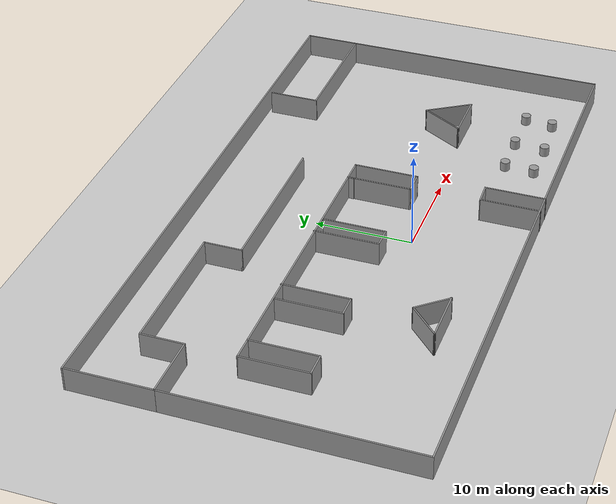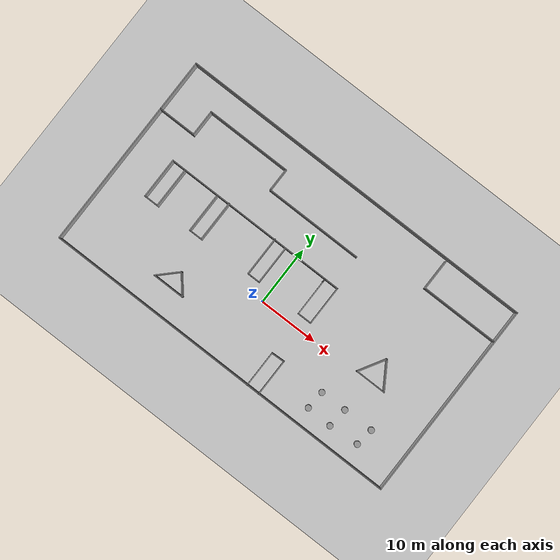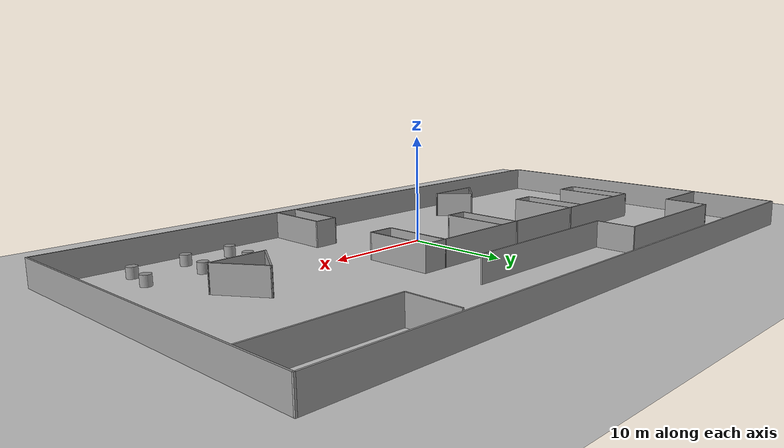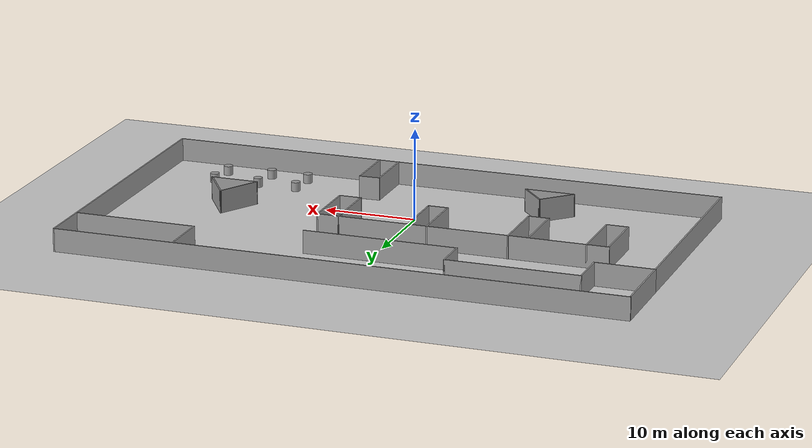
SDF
<sdf version="1.6">
 <world name="default">
  <light name="sun" type="directional">
   <pose>0 0 10 0 -0 0</pose>
   <diffuse>0.8 0.8 0.8 1</diffuse>
   <specular>0.1 0.1 0.1 1</specular>
   <attenuation>
    <range>1000</range>
    <constant>0.9</constant>
    <linear>0.01</linear>
    <quadratic>0.001</quadratic>
   </attenuation>
   <direction>-0.5 0.5 -1</direction>
  </light>
  <model name="ground_plane">
   <static>1</static>
   <link name="link">
    <collision name="collision">
     <geometry><plane><normal>0 0 1</normal><size>100 100</size></plane></geometry>
     <surface><friction><ode><mu>100</mu><mu2>50</mu2></ode></friction></surface>
    </collision>
    <visual name="visual">
     <cast_shadows>0</cast_shadows>
     <geometry><plane><normal>0 0 1</normal><size>100 100</size></plane></geometry>
     <material>
      <script><uri>file://media/materials/scripts/gazebo.material</uri><name>Gazebo/Grey</name></script>
     </material>
    </visual>
   </link>
  </model>
  <gravity>0 0 -9.8</gravity>
  <magnetic_field>6e-06 2.3e-05 -4.2e-05</magnetic_field>
  <atmosphere type="adiabatic"/>
  <physics name="default_physics" default="0" type="ode">
   <max_step_size>0.001</max_step_size>
   <real_time_factor>1</real_time_factor>
   <real_time_update_rate>1000</real_time_update_rate>
  </physics>
  <scene><ambient>0.4 0.4 0.4 1</ambient><background>0.7 0.7 0.7 1</background><shadows>1</shadows></scene>
  <spherical_coordinates>
   <surface_model>EARTH_WGS84</surface_model>
   <latitude_deg>0</latitude_deg>
   <longitude_deg>0</longitude_deg>
   <elevation>0</elevation>
   <heading_deg>0</heading_deg>
  </spherical_coordinates>
  <model name="Untitled">
   <pose>0.5791 5.47692 0 0 -0 0</pose>
   <link name="Wall_10">
    <collision name="Wall_10_Collision">
     <geometry><box><size>25 0.15 2.5</size></box></geometry>
     <pose>0 0 1.25 0 -0 0</pose>
    </collision>
    <visual name="Wall_10_Visual">
     <pose>0 0 1.25 0 -0 0</pose>
     <geometry><box><size>25 0.15 2.5</size></box></geometry>
     <material>
      <script><uri>file://media/materials/scripts/gazebo.material</uri><name>Gazebo/Grey</name></script>
      <ambient>1 1 1 1</ambient>
     </material>
    </visual>
    <pose>-30.8 -4.35416 0 0 0 -1.5708</pose>
   </link>
   <link name="Wall_11">
    <collision name="Wall_11_Collision">
     <geometry><box><size>61.75 0.15 2.5</size></box></geometry>
     <pose>0 0 1.25 0 -0 0</pose>
    </collision>
    <visual name="Wall_11_Visual">
     <pose>0 0 1.25 0 -0 0</pose>
     <geometry><box><size>61.75 0.15 2.5</size></box></geometry>
     <material>
      <script><uri>file://media/materials/scripts/gazebo.material</uri><name>Gazebo/Grey</name></script>
      <ambient>1 1 1 1</ambient>
     </material>
    </visual>
    <pose>-1e-06 -16.7792 0 0 -0 0</pose>
   </link>
   <link name="Wall_12">
    <collision name="Wall_12_Collision">
     <geometry><box><size>33.75 0.15 2.5</size></box></geometry>
     <pose>0 0 1.25 0 -0 0</pose>
    </collision>
    <visual name="Wall_12_Visual">
     <pose>0 0 1.25 0 -0 0</pose>
     <geometry><box><size>33.75 0.15 2.5</size></box></geometry>
     <material>
      <script><uri>file://media/materials/scripts/gazebo.material</uri><name>Gazebo/Grey</name></script>
      <ambient>1 1 1 1</ambient>
     </material>
    </visual>
    <pose>30.8 0.020844 0 0 -0 1.5708</pose>
   </link>
   <link name="Wall_13">
    <collision name="Wall_13_Collision">
     <geometry><box><size>61.75 0.15 2.5</size></box></geometry>
     <pose>0 0 1.25 0 -0 0</pose>
    </collision>
    <visual name="Wall_13_Visual">
     <pose>0 0 1.25 0 -0 0</pose>
     <geometry><box><size>61.75 0.15 2.5</size></box></geometry>
     <material>
      <script><uri>file://media/materials/scripts/gazebo.material</uri><name>Gazebo/Grey</name></script>
      <ambient>1 1 1 1</ambient>
     </material>
    </visual>
    <pose>-1e-06 16.8208 0 0 -0 3.14159</pose>
   </link>
   <link name="Wall_14">
    <collision name="Wall_14_Collision">
     <geometry><box><size>8.9 0.15 2.5</size></box></geometry>
     <pose>0 0 1.25 0 -0 0</pose>
    </collision>
    <visual name="Wall_14_Visual">
     <pose>0 0 1.25 0 -0 0</pose>
     <geometry><box><size>8.9 0.15 2.5</size></box></geometry>
     <material>
      <script><uri>file://media/materials/scripts/gazebo.material</uri><name>Gazebo/Grey</name></script>
      <ambient>1 1 1 1</ambient>
     </material>
    </visual>
    <pose>-30.8 12.4458 0 0 0 -1.5708</pose>
   </link>
   <link name="Wall_15">
    <collision name="Wall_15_Collision">
     <geometry><box><size>6.5 0.15 2.5</size></box></geometry>
     <pose>0 0 1.25 0 -0 0</pose>
    </collision>
    <visual name="Wall_15_Visual">
     <pose>0 0 1.25 0 -0 0</pose>
     <geometry><box><size>6.5 0.15 2.5</size></box></geometry>
     <material>
      <script><uri>file://media/materials/scripts/gazebo.material</uri><name>Gazebo/Grey</name></script>
      <ambient>1 1 1 1</ambient>
     </material>
    </visual>
    <pose>-27.625 8.07085 0 0 -0 0</pose>
   </link>
   <link name="Wall_16">
    <collision name="Wall_16_Collision">
     <geometry><box><size>4.5 0.15 2.5</size></box></geometry>
     <pose>0 0 1.25 0 -0 0</pose>
    </collision>
    <visual name="Wall_16_Visual">
     <pose>0 0 1.25 0 -0 0</pose>
     <geometry><box><size>4.5 0.15 2.5</size></box></geometry>
     <material>
      <script><uri>file://media/materials/scripts/gazebo.material</uri><name>Gazebo/Grey</name></script>
      <ambient>1 1 1 1</ambient>
     </material>
    </visual>
    <pose>-24.45 10.2458 0 0 -0 1.5708</pose>
   </link>
   <link name="Wall_17">
    <collision name="Wall_17_Collision">
     <geometry><box><size>14.5 0.15 2.5</size></box></geometry>
     <pose>0 0 1.25 0 -0 0</pose>
    </collision>
    <visual name="Wall_17_Visual">
     <pose>0 0 1.25 0 -0 0</pose>
     <geometry><box><size>14.5 0.15 2.5</size></box></geometry>
     <material>
      <script><uri>file://media/materials/scripts/gazebo.material</uri><name>Gazebo/Grey</name></script>
      <ambient>1 1 1 1</ambient>
     </material>
    </visual>
    <pose>-17.275 12.4208 0 0 -0 0</pose>
   </link>
   <link name="Wall_18">
    <collision name="Wall_18_Collision">
     <geometry><box><size>4 0.15 2.5</size></box></geometry>
     <pose>0 0 1.25 0 -0 0</pose>
    </collision>
    <visual name="Wall_18_Visual">
     <pose>0 0 1.25 0 -0 0</pose>
     <geometry><box><size>4 0.15 2.5</size></box></geometry>
     <material>
      <script><uri>file://media/materials/scripts/gazebo.material</uri><name>Gazebo/Grey</name></script>
      <ambient>1 1 1 1</ambient>
     </material>
    </visual>
    <pose>-10.1 10.4958 0 0 0 -1.5708</pose>
   </link>
   <link name="Wall_20">
    <collision name="Wall_20_Collision">
     <geometry><box><size>31.75 0.15 2.5</size></box></geometry>
     <pose>0 0 1.25 0 -0 0</pose>
    </collision>
    <visual name="Wall_20_Visual">
     <pose>0 0 1.25 0 -0 0</pose>
     <geometry><box><size>31.75 0.15 2.5</size></box></geometry>
     <material>
      <script><uri>file://media/materials/scripts/gazebo.material</uri><name>Gazebo/Grey</name></script>
      <ambient>1 1 1 1</ambient>
     </material>
    </visual>
    <pose>-8.65309 3.02587 0 0 -0 0</pose>
   </link>
   <link name="Wall_22">
    <collision name="Wall_22_Collision">
     <geometry><box><size>16.75 0.15 2.5</size></box></geometry>
     <pose>0 0 1.25 0 -0 0</pose>
    </collision>
    <visual name="Wall_22_Visual">
     <pose>0 0 1.25 0 -0 0</pose>
     <geometry><box><size>16.75 0.15 2.5</size></box></geometry>
     <material>
      <script><uri>file://media/materials/scripts/gazebo.material</uri><name>Gazebo/Grey</name></script>
      <ambient>1 1 1 1</ambient>
     </material>
    </visual>
    <pose>-1.8 8.57085 0 0 -0 0</pose>
   </link>
   <link name="Wall_24">
    <collision name="Wall_24_Collision">
     <geometry><box><size>7 0.15 2.5</size></box></geometry>
     <pose>0 0 1.25 0 -0 0</pose>
    </collision>
    <visual name="Wall_24_Visual">
     <pose>0 0 1.25 0 -0 0</pose>
     <geometry><box><size>7 0.15 2.5</size></box></geometry>
     <material>
      <script><uri>file://media/materials/scripts/gazebo.material</uri><name>Gazebo/Grey</name></script>
      <ambient>1 1 1 1</ambient>
     </material>
    </visual>
    <pose>-24.4531 -0.399134 0 0 0 -1.5708</pose>
   </link>
   <link name="Wall_25">
    <collision name="Wall_25_Collision">
     <geometry><box><size>2.5 0.15 2.5</size></box></geometry>
     <pose>0 0 1.25 0 -0 0</pose>
    </collision>
    <visual name="Wall_25_Visual">
     <pose>0 0 1.25 0 -0 0</pose>
     <geometry><box><size>2.5 0.15 2.5</size></box></geometry>
     <material>
      <script><uri>file://media/materials/scripts/gazebo.material</uri><name>Gazebo/Grey</name></script>
      <ambient>1 1 1 1</ambient>
     </material>
    </visual>
    <pose>-23.2781 -3.82413 0 0 -0 0</pose>
   </link>
   <link name="Wall_26">
    <collision name="Wall_26_Collision">
     <geometry><box><size>7 0.15 2.5</size></box></geometry>
     <pose>0 0 1.25 0 -0 0</pose>
    </collision>
    <visual name="Wall_26_Visual">
     <pose>0 0 1.25 0 -0 0</pose>
     <geometry><box><size>7 0.15 2.5</size></box></geometry>
     <material>
      <script><uri>file://media/materials/scripts/gazebo.material</uri><name>Gazebo/Grey</name></script>
      <ambient>1 1 1 1</ambient>
     </material>
    </visual>
    <pose>-22.1031 -0.399134 0 0 -0 1.5708</pose>
   </link>
   <link name="Wall_28">
    <collision name="Wall_28_Collision">
     <geometry><box><size>6.75 0.15 2.5</size></box></geometry>
     <pose>0 0 1.25 0 -0 0</pose>
    </collision>
    <visual name="Wall_28_Visual">
     <pose>0 0 1.25 0 -0 0</pose>
     <geometry><box><size>6.75 0.15 2.5</size></box></geometry>
     <material>
      <script><uri>file://media/materials/scripts/gazebo.material</uri><name>Gazebo/Grey</name></script>
      <ambient>1 1 1 1</ambient>
     </material>
    </visual>
    <pose>-15.9092 -0.436875 0 0 0 -1.5708</pose>
   </link>
   <link name="Wall_29">
    <collision name="Wall_29_Collision">
     <geometry><box><size>2.25589 0.15 2.5</size></box></geometry>
     <pose>0 0 1.25 0 -0 0</pose>
    </collision>
    <visual name="Wall_29_Visual">
     <pose>0 0 1.25 0 -0 0</pose>
     <geometry><box><size>2.25589 0.15 2.5</size></box></geometry>
     <material>
      <script><uri>file://media/materials/scripts/gazebo.material</uri><name>Gazebo/Grey</name></script>
      <ambient>1 1 1 1</ambient>
     </material>
    </visual>
    <pose>-14.8562 -3.73687 0 0 -0 0</pose>
   </link>
   <link name="Wall_30">
    <collision name="Wall_30_Collision">
     <geometry><box><size>7 0.15 2.5</size></box></geometry>
     <pose>0 0 1.25 0 -0 0</pose>
    </collision>
    <visual name="Wall_30_Visual">
     <pose>0 0 1.25 0 -0 0</pose>
     <geometry><box><size>7 0.15 2.5</size></box></geometry>
     <material>
      <script><uri>file://media/materials/scripts/gazebo.material</uri><name>Gazebo/Grey</name></script>
      <ambient>1 1 1 1</ambient>
     </material>
    </visual>
    <pose>-13.7219 -0.311875 0 0 -0 1.5708</pose>
   </link>
   <link name="Wall_32">
    <collision name="Wall_32_Collision">
     <geometry><box><size>6.75 0.15 2.5</size></box></geometry>
     <pose>0 0 1.25 0 -0 0</pose>
    </collision>
    <visual name="Wall_32_Visual">
     <pose>0 0 1.25 0 -0 0</pose>
     <geometry><box><size>6.75 0.15 2.5</size></box></geometry>
     <material>
      <script><uri>file://media/materials/scripts/gazebo.material</uri><name>Gazebo/Grey</name></script>
      <ambient>1 1 1 1</ambient>
     </material>
    </visual>
    <pose>-4.92415 -0.180987 0 0 0 -1.5708</pose>
   </link>
   <link name="Wall_33">
    <collision name="Wall_33_Collision">
     <geometry><box><size>2.25 0.15 2.5</size></box></geometry>
     <pose>0 0 1.25 0 -0 0</pose>
    </collision>
    <visual name="Wall_33_Visual">
     <pose>0 0 1.25 0 -0 0</pose>
     <geometry><box><size>2.25 0.15 2.5</size></box></geometry>
     <material>
      <script><uri>file://media/materials/scripts/gazebo.material</uri><name>Gazebo/Grey</name></script>
      <ambient>1 1 1 1</ambient>
     </material>
    </visual>
    <pose>-3.87414 -3.48099 0 0 -0 0</pose>
   </link>
   <link name="Wall_34">
    <collision name="Wall_34_Collision">
     <geometry><box><size>6.5 0.15 2.5</size></box></geometry>
     <pose>0 0 1.25 0 -0 0</pose>
    </collision>
    <visual name="Wall_34_Visual">
     <pose>0 0 1.25 0 -0 0</pose>
     <geometry><box><size>6.5 0.15 2.5</size></box></geometry>
     <material>
      <script><uri>file://media/materials/scripts/gazebo.material</uri><name>Gazebo/Grey</name></script>
      <ambient>1 1 1 1</ambient>
     </material>
    </visual>
    <pose>-2.82415 -0.305987 0 0 -0 1.5708</pose>
   </link>
   <link name="Wall_36">
    <collision name="Wall_36_Collision">
     <geometry><box><size>5.25 0.15 2.5</size></box></geometry>
     <pose>0 0 1.25 0 -0 0</pose>
    </collision>
    <visual name="Wall_36_Visual">
     <pose>0 0 1.25 0 -0 0</pose>
     <geometry><box><size>5.25 0.15 2.5</size></box></geometry>
     <material>
      <script><uri>file://media/materials/scripts/gazebo.material</uri><name>Gazebo/Grey</name></script>
      <ambient>1 1 1 1</ambient>
     </material>
    </visual>
    <pose>17.5776 13.78 0 0 0 -1.5708</pose>
   </link>
   <link name="Wall_37">
    <collision name="Wall_37_Collision">
     <geometry><box><size>13.25 0.15 2.5</size></box></geometry>
     <pose>0 0 1.25 0 -0 0</pose>
    </collision>
    <visual name="Wall_37_Visual">
     <pose>0 0 1.25 0 -0 0</pose>
     <geometry><box><size>13.25 0.15 2.5</size></box></geometry>
     <material>
      <script><uri>file://media/materials/scripts/gazebo.material</uri><name>Gazebo/Grey</name></script>
      <ambient>1 1 1 1</ambient>
     </material>
    </visual>
    <pose>24.1276 11.23 0 0 -0 0</pose>
   </link>
   <link name="Wall_40">
    <collision name="Wall_40_Collision">
     <geometry><box><size>6.75 0.15 2.5</size></box></geometry>
     <pose>0 0 1.25 0 -0 0</pose>
    </collision>
    <visual name="Wall_40_Visual">
     <pose>0 0 1.25 0 -0 0</pose>
     <geometry><box><size>6.75 0.15 2.5</size></box></geometry>
     <material>
      <script><uri>file://media/materials/scripts/gazebo.material</uri><name>Gazebo/Grey</name></script>
      <ambient>1 1 1 1</ambient>
     </material>
    </visual>
    <pose>7.14691 -0.274134 0 0 0 -1.5708</pose>
   </link>
   <link name="Wall_41">
    <collision name="Wall_41_Collision">
     <geometry><box><size>2.5 0.15 2.5</size></box></geometry>
     <pose>0 0 1.25 0 -0 0</pose>
    </collision>
    <visual name="Wall_41_Visual">
     <pose>0 0 1.25 0 -0 0</pose>
     <geometry><box><size>2.5 0.15 2.5</size></box></geometry>
     <material>
      <script><uri>file://media/materials/scripts/gazebo.material</uri><name>Gazebo/Grey</name></script>
      <ambient>1 1 1 1</ambient>
     </material>
    </visual>
    <pose>5.97191 -3.57413 0 0 -0 3.14159</pose>
   </link>
   <link name="Wall_42">
    <collision name="Wall_42_Collision">
     <geometry><box><size>6.75 0.15 2.5</size></box></geometry>
     <pose>0 0 1.25 0 -0 0</pose>
    </collision>
    <visual name="Wall_42_Visual">
     <pose>0 0 1.25 0 -0 0</pose>
     <geometry><box><size>6.75 0.15 2.5</size></box></geometry>
     <material>
      <script><uri>file://media/materials/scripts/gazebo.material</uri><name>Gazebo/Grey</name></script>
      <ambient>1 1 1 1</ambient>
     </material>
    </visual>
    <pose>4.79691 -0.274134 0 0 -0 1.5708</pose>
   </link>
   <link name="Wall_43">
    <collision name="Wall_43_Collision">
     <geometry><box><size>0.725074 0.15 2.5</size></box></geometry>
     <pose>0 0 1.25 0 -0 0</pose>
    </collision>
    <visual name="Wall_43_Visual">
     <pose>0 0 1.25 0 -0 0</pose>
     <geometry><box><size>0.725074 0.15 2.5</size></box></geometry>
     <material>
      <script><uri>file://media/materials/scripts/gazebo.material</uri><name>Gazebo/Grey</name></script>
      <ambient>1 1 1 1</ambient>
     </material>
    </visual>
    <pose>4.76155 2.74051 0 0 0 -1.69407</pose>
   </link>
   <link name="Wall_45">
    <collision name="Wall_45_Collision">
     <geometry><box><size>6.25 0.15 2.5</size></box></geometry>
     <pose>0 0 1.25 0 -0 0</pose>
    </collision>
    <visual name="Wall_45_Visual">
     <pose>0 0 1.25 0 -0 0</pose>
     <geometry><box><size>6.25 0.15 2.5</size></box></geometry>
     <material>
      <script><uri>file://media/materials/scripts/gazebo.material</uri><name>Gazebo/Grey</name></script>
      <ambient>1 1 1 1</ambient>
     </material>
    </visual>
    <pose>7.53119 -13.7708 0 0 -0 1.5708</pose>
   </link>
   <link name="Wall_46">
    <collision name="Wall_46_Collision">
     <geometry><box><size>2.34557 0.15 2.5</size></box></geometry>
     <pose>0 0 1.25 0 -0 0</pose>
    </collision>
    <visual name="Wall_46_Visual">
     <pose>0 0 1.25 0 -0 0</pose>
     <geometry><box><size>2.34557 0.15 2.5</size></box></geometry>
     <material>
      <script><uri>file://media/materials/scripts/gazebo.material</uri><name>Gazebo/Grey</name></script>
      <ambient>1 1 1 1</ambient>
     </material>
    </visual>
    <pose>6.4344 -10.6741 0 0 0 -3.09896</pose>
   </link>
   <link name="Wall_47">
    <collision name="Wall_47_Collision">
     <geometry><box><size>6.25 0.15 2.5</size></box></geometry>
     <pose>0 0 1.25 0 -0 0</pose>
    </collision>
    <visual name="Wall_47_Visual">
     <pose>0 0 1.25 0 -0 0</pose>
     <geometry><box><size>6.25 0.15 2.5</size></box></geometry>
     <material>
      <script><uri>file://media/materials/scripts/gazebo.material</uri><name>Gazebo/Grey</name></script>
      <ambient>1 1 1 1</ambient>
     </material>
    </visual>
    <pose>5.33761 -13.7708 0 0 0 -1.5708</pose>
   </link>
   <link name="Wall_49">
    <collision name="Wall_49_Collision">
     <geometry><box><size>5 0.15 2.5</size></box></geometry>
     <pose>0 0 1.25 0 -0 0</pose>
    </collision>
    <visual name="Wall_49_Visual">
     <pose>0 0 1.25 0 -0 0</pose>
     <geometry><box><size>5 0.15 2.5</size></box></geometry>
     <material>
      <script><uri>file://media/materials/scripts/gazebo.material</uri><name>Gazebo/Grey</name></script>
      <ambient>1 1 1 1</ambient>
     </material>
    </visual>
    <pose>18.39 -2.88731 0 0 0 -2.0944</pose>
   </link>
   <link name="Wall_50">
    <collision name="Wall_50_Collision">
     <geometry><box><size>5.25 0.15 2.5</size></box></geometry>
     <pose>0 0 1.25 0 -0 0</pose>
    </collision>
    <visual name="Wall_50_Visual">
     <pose>0 0 1.25 0 -0 0</pose>
     <geometry><box><size>5.25 0.15 2.5</size></box></geometry>
     <material>
      <script><uri>file://media/materials/scripts/gazebo.material</uri><name>Gazebo/Grey</name></script>
      <ambient>1 1 1 1</ambient>
     </material>
    </visual>
    <pose>19.7275 -4.98742 0 0 -0 0</pose>
   </link>
   <link name="Wall_51">
    <collision name="Wall_51_Collision">
     <geometry><box><size>5.12971 0.15 2.5</size></box></geometry>
     <pose>0 0 1.25 0 -0 0</pose>
    </collision>
    <visual name="Wall_51_Visual">
     <pose>0 0 1.25 0 -0 0</pose>
     <geometry><box><size>5.12971 0.15 2.5</size></box></geometry>
     <material>
      <script><uri>file://media/materials/scripts/gazebo.material</uri><name>Gazebo/Grey</name></script>
      <ambient>1 1 1 1</ambient>
     </material>
    </visual>
    <pose>20.94 -2.88731 0 0 -0 2.13789</pose>
   </link>
   <link name="Wall_54">
    <collision name="Wall_54_Collision">
     <geometry><box><size>4.25 0.15 2.5</size></box></geometry>
     <pose>0 0 1.25 0 -0 0</pose>
    </collision>
    <visual name="Wall_54_Visual">
     <pose>0 0 1.25 0 -0 0</pose>
     <geometry><box><size>4.25 0.15 2.5</size></box></geometry>
     <material>
      <script><uri>file://media/materials/scripts/gazebo.material</uri><name>Gazebo/Grey</name></script>
      <ambient>1 1 1 1</ambient>
     </material>
    </visual>
    <pose>-14.5051 -10.9394 0 0 0 -2.35619</pose>
   </link>
   <link name="Wall_55">
    <collision name="Wall_55_Collision">
     <geometry><box><size>5.5 0.15 2.5</size></box></geometry>
     <pose>0 0 1.25 0 -0 0</pose>
    </collision>
    <visual name="Wall_55_Visual">
     <pose>0 0 1.25 0 -0 0</pose>
     <geometry><box><size>5.5 0.15 2.5</size></box></geometry>
     <material>
      <script><uri>file://media/materials/scripts/gazebo.material</uri><name>Gazebo/Grey</name></script>
      <ambient>1 1 1 1</ambient>
     </material>
    </visual>
    <pose>-13.2797 -12.3889 0 0 -0 0</pose>
   </link>
   <link name="Wall_56">
    <collision name="Wall_56_Collision">
     <geometry><box><size>3.94628 0.15 2.5</size></box></geometry>
     <pose>0 0 1.25 0 -0 0</pose>
    </collision>
    <visual name="Wall_56_Visual">
     <pose>0 0 1.25 0 -0 0</pose>
     <geometry><box><size>3.94628 0.15 2.5</size></box></geometry>
     <material>
      <script><uri>file://media/materials/scripts/gazebo.material</uri><name>Gazebo/Grey</name></script>
      <ambient>1 1 1 1</ambient>
     </material>
    </visual>
    <pose>-11.8301 -10.9394 0 0 -0 2.2726</pose>
   </link>
   <static>1</static>
  </model>
  <model name="unit_cylinder_0">
   <pose>15.5734 -5.33632 0.499998 3e-06 -4e-06 0</pose>
   <link name="link">
    <inertial>
     <mass>1</mass>
     <inertia><ixx>0.145833</ixx><ixy>0</ixy><ixz>0</ixz><iyy>0.145833</iyy><iyz>0</iyz><izz>0.125</izz></inertia>
    </inertial>
    <collision name="collision">
     <geometry><cylinder><radius>0.5</radius><length>1</length></cylinder></geometry>
    </collision>
    <visual name="visual">
     <geometry><cylinder><radius>0.5</radius><length>1</length></cylinder></geometry>
     <material>
      <script><name>Gazebo/Grey</name><uri>file://media/materials/scripts/gazebo.material</uri></script>
     </material>
    </visual>
   </link>
  </model>
  <model name="unit_cylinder_1">
   <pose>24.9863 -5.23273 0.499992 -3e-06 -4e-06 -0</pose>
   <link name="link">
    <inertial>
     <mass>1</mass>
     <inertia><ixx>0.145833</ixx><ixy>0</ixy><ixz>0</ixz><iyy>0.145833</iyy><iyz>0</iyz><izz>0.125</izz></inertia>
    </inertial>
    <collision name="collision">
     <geometry><cylinder><radius>0.5</radius><length>1</length></cylinder></geometry>
    </collision>
    <visual name="visual">
     <geometry><cylinder><radius>0.5</radius><length>1</length></cylinder></geometry>
     <material>
      <script><name>Gazebo/Grey</name><uri>file://media/materials/scripts/gazebo.material</uri></script>
     </material>
    </visual>
   </link>
  </model>
  <model name="unit_cylinder_2">
   <pose>19.953 -5.28832 0.499993 -3e-06 -3e-06 0</pose>
   <link name="link">
    <inertial>
     <mass>1</mass>
     <inertia><ixx>0.145833</ixx><ixy>0</ixy><ixz>0</ixz><iyy>0.145833</iyy><iyz>0</iyz><izz>0.125</izz></inertia>
    </inertial>
    <collision name="collision">
     <geometry><cylinder><radius>0.5</radius><length>1</length></cylinder></geometry>
    </collision>
    <visual name="visual">
     <geometry><cylinder><radius>0.5</radius><length>1</length></cylinder></geometry>
     <material>
      <script><name>Gazebo/Grey</name><uri>file://media/materials/scripts/gazebo.material</uri></script>
     </material>
    </visual>
   </link>
  </model>
  <model name="unit_cylinder_3">
   <pose>15.3887 -8.45503 0.499997 3e-06 4e-06 -0</pose>
   <link name="link">
    <inertial>
     <mass>1</mass>
     <inertia><ixx>0.145833</ixx><ixy>0</ixy><ixz>0</ixz><iyy>0.145833</iyy><iyz>0</iyz><izz>0.125</izz></inertia>
    </inertial>
    <collision name="collision">
     <geometry><cylinder><radius>0.5</radius><length>1</length></cylinder></geometry>
    </collision>
    <visual name="visual">
     <geometry><cylinder><radius>0.5</radius><length>1</length></cylinder></geometry>
     <material>
      <script><name>Gazebo/Grey</name><uri>file://media/materials/scripts/gazebo.material</uri></script>
     </material>
    </visual>
   </link>
  </model>
  <model name="unit_cylinder_4">
   <pose>19.6378 -8.57293 0.499993 -3e-06 -4e-06 -0</pose>
   <link name="link">
    <inertial>
     <mass>1</mass>
     <inertia><ixx>0.145833</ixx><ixy>0</ixy><ixz>0</ixz><iyy>0.145833</iyy><iyz>0</iyz><izz>0.125</izz></inertia>
    </inertial>
    <collision name="collision">
     <geometry><cylinder><radius>0.5</radius><length>1</length></cylinder></geometry>
    </collision>
    <visual name="visual">
     <geometry><cylinder><radius>0.5</radius><length>1</length></cylinder></geometry>
     <material>
      <script><name>Gazebo/Grey</name><uri>file://media/materials/scripts/gazebo.material</uri></script>
     </material>
    </visual>
   </link>
  </model>
  <model name="unit_cylinder_5">
   <pose>24.6108 -8.22044 0.499997 3e-06 4e-06 -0</pose>
   <link name="link">
    <inertial>
     <mass>1</mass>
     <inertia><ixx>0.145833</ixx><ixy>0</ixy><ixz>0</ixz><iyy>0.145833</iyy><iyz>0</iyz><izz>0.125</izz></inertia>
    </inertial>
    <collision name="collision">
     <geometry><cylinder><radius>0.5</radius><length>1</length></cylinder></geometry>
    </collision>
    <visual name="visual">
     <geometry><cylinder><radius>0.5</radius><length>1</length></cylinder></geometry>
     <material>
      <script><name>Gazebo/Grey</name><uri>file://media/materials/scripts/gazebo.material</uri></script>
     </material>
    </visual>
   </link>
  </model>
 </world>
</sdf>
